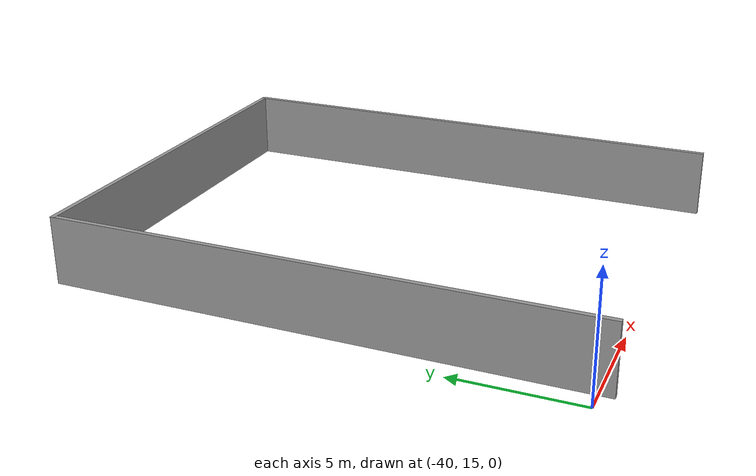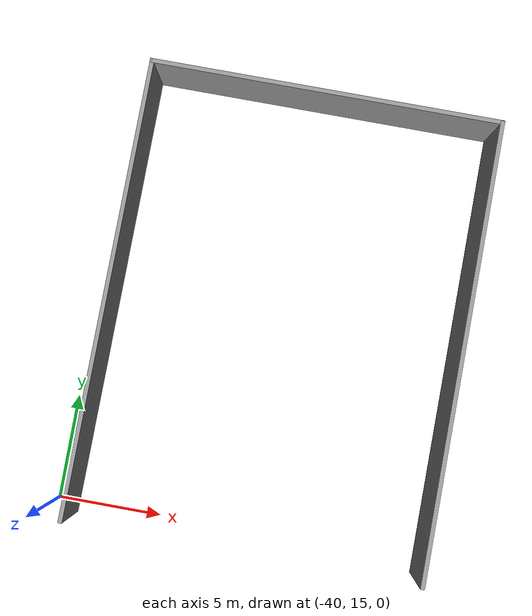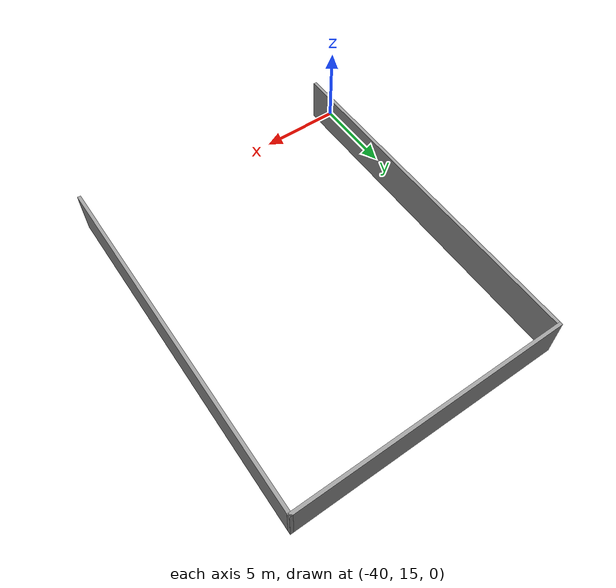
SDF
<sdf version="1.6">
 <world name="default">
  <model name="g2_clone_0_0_clone_clone_0_clone">
   <link name="link">
    <pose>0 0 1.4 0 -0 0</pose>
    <inertial>
     <mass>1</mass>
     <inertia><ixx>1</ixx><ixy>0</ixy><ixz>0</ixz><iyy>1</iyy><iyz>0</iyz><izz>1</izz></inertia>
    </inertial>
    <visual name="visual">
     <cast_shadows>0</cast_shadows>
     <geometry><box><size>21.8 0.2 2.8</size></box></geometry>
     <material>
      <script>
       <uri>model://grey_wall/materials/scripts</uri>
       <uri>model://grey_wall/materials/textures</uri>
       <name>vrc/grey_wall</name>
      </script>
      <ambient>1 1 1 1</ambient>
      <diffuse>1 1 1 1</diffuse>
      <specular>0 0 0 1</specular>
      <emissive>0 0 0 1</emissive>
      <shader type="vertex"><normal_map>__default__</normal_map></shader>
     </material>
    </visual>
    <collision name="collision">
     <geometry><box><size>21.8 0.2 2.8</size></box></geometry>
     <surface>
      <friction>
       <ode><mu>1</mu><mu2>1</mu2><fdir1>0 0 0</fdir1><slip1>0</slip1><slip2>0</slip2></ode>
       <torsional>
        <coefficient>1</coefficient>
        <patch_radius>0</patch_radius>
        <surface_radius>0</surface_radius>
        <use_patch_radius>1</use_patch_radius>
        <ode><slip>0</slip></ode>
       </torsional>
      </friction>
      <bounce><restitution_coefficient>0</restitution_coefficient><threshold>1e+06</threshold></bounce>
      <contact>
       <collide_without_contact>0</collide_without_contact>
       <collide_without_contact_bitmask>1</collide_without_contact_bitmask>
       <collide_bitmask>1</collide_bitmask>
       <ode>
        <soft_cfm>0</soft_cfm>
        <soft_erp>0.2</soft_erp>
        <kp>1e+13</kp>
        <kd>1</kd>
        <max_vel>0.01</max_vel>
        <min_depth>0</min_depth>
       </ode>
       <bullet>
        <split_impulse>1</split_impulse>
        <split_impulse_penetration_threshold>-0.01</split_impulse_penetration_threshold>
        <soft_cfm>0</soft_cfm>
        <soft_erp>0.2</soft_erp>
        <kp>1e+13</kp>
        <kd>1</kd>
       </bullet>
      </contact>
     </surface>
    </collision>
   </link>
   <static>1</static>
   <pose>-22.4339 25.3523 0 0 0 -1.57584</pose>
  </model>
  <model name="g1_clone_1_1_0_clone_0_0_clone">
   <link name="link">
    <pose>1.12208 9.77176 1.4 0 -0 0</pose>
    <inertial>
     <mass>1</mass>
     <inertia><ixx>1</ixx><ixy>0</ixy><ixz>0</ixz><iyy>1</iyy><iyz>0</iyz><izz>1</izz></inertia>
    </inertial>
    <visual name="visual">
     <cast_shadows>0</cast_shadows>
     <geometry><box><size>16.8 0.2 2.8</size></box></geometry>
     <material>
      <script>
       <uri>model://grey_wall/materials/scripts</uri>
       <uri>model://grey_wall/materials/textures</uri>
       <name>vrc/grey_wall</name>
      </script>
      <ambient>1 1 1 1</ambient>
      <diffuse>1 1 1 1</diffuse>
      <specular>0 0 0 1</specular>
      <emissive>0 0 0 1</emissive>
      <shader type="vertex"><normal_map>__default__</normal_map></shader>
     </material>
    </visual>
    <collision name="collision">
     <geometry><box><size>16.8 0.2 2.8</size></box></geometry>
     <surface>
      <friction>
       <ode><mu>1</mu><mu2>1</mu2><fdir1>0 0 0</fdir1><slip1>0</slip1><slip2>0</slip2></ode>
       <torsional>
        <coefficient>1</coefficient>
        <patch_radius>0</patch_radius>
        <surface_radius>0</surface_radius>
        <use_patch_radius>1</use_patch_radius>
        <ode><slip>0</slip></ode>
       </torsional>
      </friction>
      <bounce><restitution_coefficient>0</restitution_coefficient><threshold>1e+06</threshold></bounce>
      <contact>
       <collide_without_contact>0</collide_without_contact>
       <collide_without_contact_bitmask>1</collide_without_contact_bitmask>
       <collide_bitmask>1</collide_bitmask>
       <ode>
        <soft_cfm>0</soft_cfm>
        <soft_erp>0.2</soft_erp>
        <kp>1e+13</kp>
        <kd>1</kd>
        <max_vel>0.01</max_vel>
        <min_depth>0</min_depth>
       </ode>
       <bullet>
        <split_impulse>1</split_impulse>
        <split_impulse_penetration_threshold>-0.01</split_impulse_penetration_threshold>
        <soft_cfm>0</soft_cfm>
        <soft_erp>0.2</soft_erp>
        <kp>1e+13</kp>
        <kd>1</kd>
       </bullet>
      </contact>
     </surface>
    </collision>
   </link>
   <static>1</static>
   <pose>-31.7991 26.378 0 0 -0 0</pose>
  </model>
  <model name="g2_clone_0_0_0_clone_clone">
   <link name="link">
    <pose>0 0 1.4 0 -0 0</pose>
    <inertial>
     <mass>1</mass>
     <inertia><ixx>1</ixx><ixy>0</ixy><ixz>0</ixz><iyy>1</iyy><iyz>0</iyz><izz>1</izz></inertia>
    </inertial>
    <visual name="visual">
     <cast_shadows>0</cast_shadows>
     <geometry><box><size>21.8 0.2 2.8</size></box></geometry>
     <material>
      <script>
       <uri>model://grey_wall/materials/scripts</uri>
       <uri>model://grey_wall/materials/textures</uri>
       <name>vrc/grey_wall</name>
      </script>
      <ambient>1 1 1 1</ambient>
      <diffuse>1 1 1 1</diffuse>
      <specular>0 0 0 1</specular>
      <emissive>0 0 0 1</emissive>
      <shader type="vertex"><normal_map>__default__</normal_map></shader>
     </material>
    </visual>
    <collision name="collision">
     <geometry><box><size>21.8 0.2 2.8</size></box></geometry>
     <surface>
      <friction>
       <ode><mu>1</mu><mu2>1</mu2><fdir1>0 0 0</fdir1><slip1>0</slip1><slip2>0</slip2></ode>
       <torsional>
        <coefficient>1</coefficient>
        <patch_radius>0</patch_radius>
        <surface_radius>0</surface_radius>
        <use_patch_radius>1</use_patch_radius>
        <ode><slip>0</slip></ode>
       </torsional>
      </friction>
      <bounce><restitution_coefficient>0</restitution_coefficient><threshold>1e+06</threshold></bounce>
      <contact>
       <collide_without_contact>0</collide_without_contact>
       <collide_without_contact_bitmask>1</collide_without_contact_bitmask>
       <collide_bitmask>1</collide_bitmask>
       <ode>
        <soft_cfm>0</soft_cfm>
        <soft_erp>0.2</soft_erp>
        <kp>1e+13</kp>
        <kd>1</kd>
        <max_vel>0.01</max_vel>
        <min_depth>0</min_depth>
       </ode>
       <bullet>
        <split_impulse>1</split_impulse>
        <split_impulse_penetration_threshold>-0.01</split_impulse_penetration_threshold>
        <soft_cfm>0</soft_cfm>
        <soft_erp>0.2</soft_erp>
        <kp>1e+13</kp>
        <kd>1</kd>
       </bullet>
      </contact>
     </surface>
    </collision>
   </link>
   <static>1</static>
   <pose>-39.0357 25.3459 0 0 0 -1.57584</pose>
  </model>
 </world>
</sdf>
